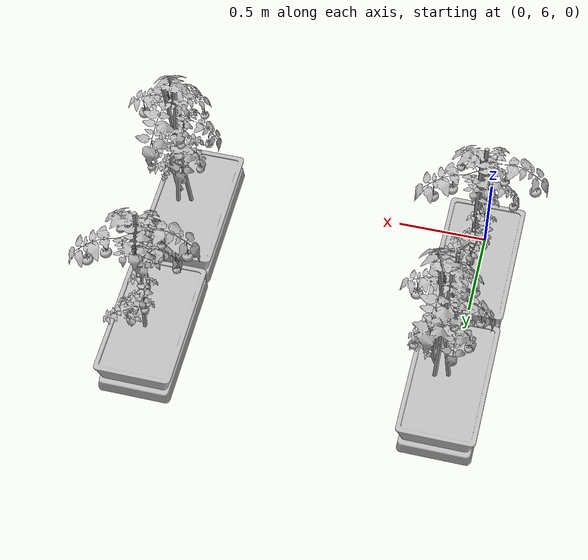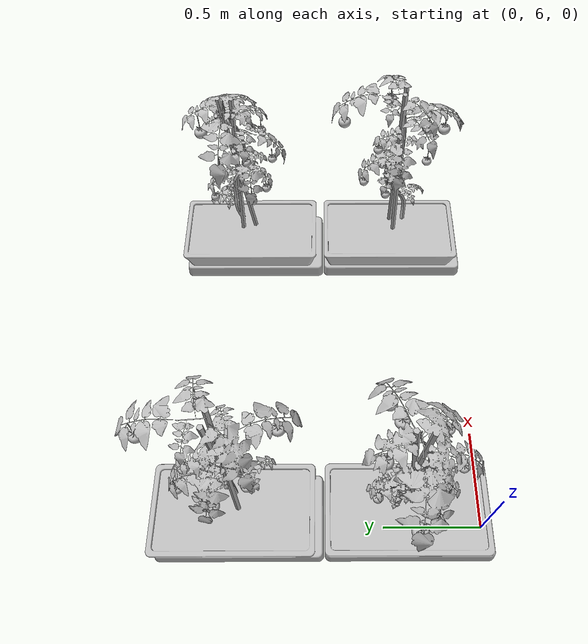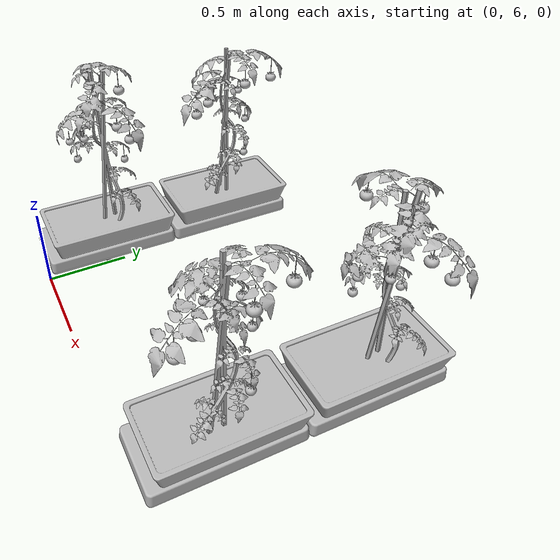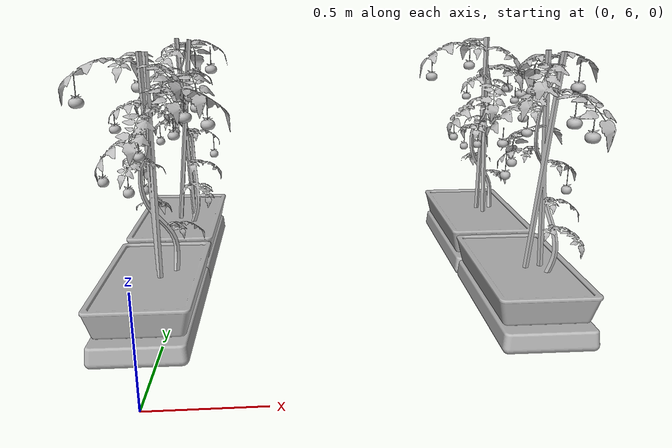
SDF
<sdf version="1.6">
 <world name="default">
  <model name="plant08">
   <static>0</static>
   <link name="tomato_plant_link">
    <inertial>
     <mass>20</mass>
     <inertia><ixx>1</ixx><ixy>0</ixy><ixz>0</ixz><iyy>1</iyy><iyz>0</iyz><izz>1</izz></inertia>
    </inertial>
    <visual name="visual">
     <geometry><mesh><uri>model://tomato_plant/meshes/tomato_plant.obj</uri></mesh></geometry>
    </visual>
    <collision name="collision">
     <pose>0 0 0.05 0 -0 0</pose>
     <geometry><box><size>0.1 0.1 0.1</size></box></geometry>
    </collision>
   </link>
   <link name="t_link_0">
    <pose>0.176111 0.046061 0.713729 0 -0 0</pose>
    <inertial>
     <mass>0.1</mass>
     <inertia><ixx>1</ixx><ixy>0</ixy><ixz>0</ixz><iyy>1</iyy><iyz>0</iyz><izz>1</izz></inertia>
    </inertial>
    <collision name="collision"><geometry><sphere><radius>0.02</radius></sphere></geometry></collision>
    <visual name="visual">
     <geometry><mesh><uri>model://green_tomato/meshes/green_tomato.obj</uri></mesh></geometry>
    </visual>
   </link>
   <joint name="t_joint_0" type="fixed">
    <parent>tomato_plant_link</parent>
    <child>t_link_0</child>
    <axis>
     <xyz>0 0 1</xyz>
     <use_parent_model_frame>1</use_parent_model_frame>
     <limit><lower>-1e+16</lower><upper>1e+16</upper></limit>
    </axis>
    <sensor name="force_torque" type="force_torque">
     <always_on>1</always_on>
     <update_rate>250</update_rate>
     <plugin name="breakable_0" filename="libBreakableJointPlugin.so">
      <breaking_force_N>10</breaking_force_N>
     </plugin>
    </sensor>
   </joint>
   <link name="t_link_1">
    <pose>0.063172 0.108629 0.685474 0 -0 0</pose>
    <inertial>
     <mass>0.1</mass>
     <inertia><ixx>1</ixx><ixy>0</ixy><ixz>0</ixz><iyy>1</iyy><iyz>0</iyz><izz>1</izz></inertia>
    </inertial>
    <collision name="collision"><geometry><sphere><radius>0.02</radius></sphere></geometry></collision>
    <visual name="visual">
     <geometry><mesh><uri>model://green_tomato/meshes/green_tomato.obj</uri></mesh></geometry>
    </visual>
   </link>
   <joint name="t_joint_1" type="fixed">
    <parent>tomato_plant_link</parent>
    <child>t_link_1</child>
    <axis>
     <xyz>0 0 1</xyz>
     <use_parent_model_frame>1</use_parent_model_frame>
     <limit><lower>-1e+16</lower><upper>1e+16</upper></limit>
    </axis>
    <sensor name="force_torque" type="force_torque">
     <always_on>1</always_on>
     <update_rate>250</update_rate>
     <plugin name="breakable_1" filename="libBreakableJointPlugin.so">
      <breaking_force_N>10</breaking_force_N>
     </plugin>
    </sensor>
   </joint>
   <link name="t_link_2">
    <pose>0.062027 -0.170581 0.614534 0 -0 0</pose>
    <inertial>
     <mass>0.1</mass>
     <inertia><ixx>1</ixx><ixy>0</ixy><ixz>0</ixz><iyy>1</iyy><iyz>0</iyz><izz>1</izz></inertia>
    </inertial>
    <collision name="collision"><geometry><sphere><radius>0.02</radius></sphere></geometry></collision>
    <visual name="visual">
     <geometry><mesh><uri>model://green_tomato/meshes/green_tomato.obj</uri></mesh></geometry>
    </visual>
   </link>
   <joint name="t_joint_2" type="fixed">
    <parent>tomato_plant_link</parent>
    <child>t_link_2</child>
    <axis>
     <xyz>0 0 1</xyz>
     <use_parent_model_frame>1</use_parent_model_frame>
     <limit><lower>-1e+16</lower><upper>1e+16</upper></limit>
    </axis>
    <sensor name="force_torque" type="force_torque">
     <always_on>1</always_on>
     <update_rate>250</update_rate>
     <plugin name="breakable_2" filename="libBreakableJointPlugin.so">
      <breaking_force_N>10</breaking_force_N>
     </plugin>
    </sensor>
   </joint>
   <link name="t_link_3">
    <pose>0.114746 0.0304 0.926457 0 -0 0</pose>
    <inertial>
     <mass>0.1</mass>
     <inertia><ixx>1</ixx><ixy>0</ixy><ixz>0</ixz><iyy>1</iyy><iyz>0</iyz><izz>1</izz></inertia>
    </inertial>
    <collision name="collision"><geometry><sphere><radius>0.02</radius></sphere></geometry></collision>
    <visual name="visual">
     <geometry><mesh><uri>model://yellow_tomato/meshes/yellow_tomato.obj</uri></mesh></geometry>
    </visual>
   </link>
   <joint name="t_joint_3" type="fixed">
    <parent>tomato_plant_link</parent>
    <child>t_link_3</child>
    <axis>
     <xyz>0 0 1</xyz>
     <use_parent_model_frame>1</use_parent_model_frame>
     <limit><lower>-1e+16</lower><upper>1e+16</upper></limit>
    </axis>
    <sensor name="force_torque" type="force_torque">
     <always_on>1</always_on>
     <update_rate>250</update_rate>
     <plugin name="breakable_3" filename="libBreakableJointPlugin.so">
      <breaking_force_N>10</breaking_force_N>
     </plugin>
    </sensor>
   </joint>
   <link name="t_link_4">
    <pose>0.003426 0.147925 0.840454 0 -0 0</pose>
    <inertial>
     <mass>0.1</mass>
     <inertia><ixx>1</ixx><ixy>0</ixy><ixz>0</ixz><iyy>1</iyy><iyz>0</iyz><izz>1</izz></inertia>
    </inertial>
    <collision name="collision"><geometry><sphere><radius>0.02</radius></sphere></geometry></collision>
    <visual name="visual">
     <geometry><mesh><uri>model://yellow_tomato/meshes/yellow_tomato.obj</uri></mesh></geometry>
    </visual>
   </link>
   <joint name="t_joint_4" type="fixed">
    <parent>tomato_plant_link</parent>
    <child>t_link_4</child>
    <axis>
     <xyz>0 0 1</xyz>
     <use_parent_model_frame>1</use_parent_model_frame>
     <limit><lower>-1e+16</lower><upper>1e+16</upper></limit>
    </axis>
    <sensor name="force_torque" type="force_torque">
     <always_on>1</always_on>
     <update_rate>250</update_rate>
     <plugin name="breakable_4" filename="libBreakableJointPlugin.so">
      <breaking_force_N>10</breaking_force_N>
     </plugin>
    </sensor>
   </joint>
   <link name="t_link_5">
    <pose>-0.12391 0.091553 0.91111 0 -0 0</pose>
    <inertial>
     <mass>0.1</mass>
     <inertia><ixx>1</ixx><ixy>0</ixy><ixz>0</ixz><iyy>1</iyy><iyz>0</iyz><izz>1</izz></inertia>
    </inertial>
    <collision name="collision"><geometry><sphere><radius>0.02</radius></sphere></geometry></collision>
    <visual name="visual">
     <geometry><mesh><uri>model://yellow_tomato/meshes/yellow_tomato.obj</uri></mesh></geometry>
    </visual>
   </link>
   <joint name="t_joint_5" type="fixed">
    <parent>tomato_plant_link</parent>
    <child>t_link_5</child>
    <axis>
     <xyz>0 0 1</xyz>
     <use_parent_model_frame>1</use_parent_model_frame>
     <limit><lower>-1e+16</lower><upper>1e+16</upper></limit>
    </axis>
    <sensor name="force_torque" type="force_torque">
     <always_on>1</always_on>
     <update_rate>250</update_rate>
     <plugin name="breakable_5" filename="libBreakableJointPlugin.so">
      <breaking_force_N>10</breaking_force_N>
     </plugin>
    </sensor>
   </joint>
   <link name="t_link_6">
    <pose>-0.23014 -0.132697 0.911579 0 -0 0</pose>
    <inertial>
     <mass>0.1</mass>
     <inertia><ixx>1</ixx><ixy>0</ixy><ixz>0</ixz><iyy>1</iyy><iyz>0</iyz><izz>1</izz></inertia>
    </inertial>
    <collision name="collision"><geometry><sphere><radius>0.03</radius></sphere></geometry></collision>
    <visual name="visual">
     <geometry><mesh><uri>model://red_tomato/meshes/red_tomato.obj</uri></mesh></geometry>
    </visual>
   </link>
   <joint name="t_joint_6" type="fixed">
    <parent>tomato_plant_link</parent>
    <child>t_link_6</child>
    <axis>
     <xyz>0 0 1</xyz>
     <use_parent_model_frame>1</use_parent_model_frame>
     <limit><lower>-1e+16</lower><upper>1e+16</upper></limit>
    </axis>
    <sensor name="force_torque" type="force_torque">
     <always_on>1</always_on>
     <update_rate>250</update_rate>
     <plugin name="breakable_6" filename="libBreakableJointPlugin.so">
      <breaking_force_N>10</breaking_force_N>
     </plugin>
    </sensor>
   </joint>
   <link name="t_link_7">
    <pose>-0.139776 -0.09326 0.950185 0 -0 0</pose>
    <inertial>
     <mass>0.1</mass>
     <inertia><ixx>1</ixx><ixy>0</ixy><ixz>0</ixz><iyy>1</iyy><iyz>0</iyz><izz>1</izz></inertia>
    </inertial>
    <collision name="collision"><geometry><sphere><radius>0.03</radius></sphere></geometry></collision>
    <visual name="visual">
     <geometry><mesh><uri>model://red_tomato/meshes/red_tomato.obj</uri></mesh></geometry>
    </visual>
   </link>
   <joint name="t_joint_7" type="fixed">
    <parent>tomato_plant_link</parent>
    <child>t_link_7</child>
    <axis>
     <xyz>0 0 1</xyz>
     <use_parent_model_frame>1</use_parent_model_frame>
     <limit><lower>-1e+16</lower><upper>1e+16</upper></limit>
    </axis>
    <sensor name="force_torque" type="force_torque">
     <always_on>1</always_on>
     <update_rate>250</update_rate>
     <plugin name="breakable_7" filename="libBreakableJointPlugin.so">
      <breaking_force_N>10</breaking_force_N>
     </plugin>
    </sensor>
   </joint>
   <link name="t_link_8">
    <pose>0.284181 -0.063758 1.01928 0 -0 0</pose>
    <inertial>
     <mass>0.1</mass>
     <inertia><ixx>1</ixx><ixy>0</ixy><ixz>0</ixz><iyy>1</iyy><iyz>0</iyz><izz>1</izz></inertia>
    </inertial>
    <collision name="collision"><geometry><sphere><radius>0.03</radius></sphere></geometry></collision>
    <visual name="visual">
     <geometry><mesh><uri>model://red_tomato/meshes/red_tomato.obj</uri></mesh></geometry>
    </visual>
   </link>
   <joint name="t_joint_8" type="fixed">
    <parent>tomato_plant_link</parent>
    <child>t_link_8</child>
    <axis>
     <xyz>0 0 1</xyz>
     <use_parent_model_frame>1</use_parent_model_frame>
     <limit><lower>-1e+16</lower><upper>1e+16</upper></limit>
    </axis>
    <sensor name="force_torque" type="force_torque">
     <always_on>1</always_on>
     <update_rate>250</update_rate>
     <plugin name="breakable_8" filename="libBreakableJointPlugin.so">
      <breaking_force_N>10</breaking_force_N>
     </plugin>
    </sensor>
   </joint>
   <link name="t_link_9">
    <pose>0.055319 -0.176349 1.06525 0 -0 0</pose>
    <inertial>
     <mass>0.1</mass>
     <inertia><ixx>1</ixx><ixy>0</ixy><ixz>0</ixz><iyy>1</iyy><iyz>0</iyz><izz>1</izz></inertia>
    </inertial>
    <collision name="collision"><geometry><sphere><radius>0.03</radius></sphere></geometry></collision>
    <visual name="visual">
     <geometry><mesh><uri>model://red_tomato/meshes/red_tomato.obj</uri></mesh></geometry>
    </visual>
   </link>
   <joint name="t_joint_9" type="fixed">
    <parent>tomato_plant_link</parent>
    <child>t_link_9</child>
    <axis>
     <xyz>0 0 1</xyz>
     <use_parent_model_frame>1</use_parent_model_frame>
     <limit><lower>-1e+16</lower><upper>1e+16</upper></limit>
    </axis>
    <sensor name="force_torque" type="force_torque">
     <always_on>1</always_on>
     <update_rate>250</update_rate>
     <plugin name="breakable_9" filename="libBreakableJointPlugin.so">
      <breaking_force_N>10</breaking_force_N>
     </plugin>
    </sensor>
   </joint>
   <pose>0.020511 6.40806 0.109278 0.000786 -0.001547 3.1361</pose>
  </model>
  <model name="trough08">
   <static>1</static>
   <link name="trough_link">
    <visual name="visual"><geometry><mesh><uri>model://trough/meshes/truf.obj</uri></mesh></geometry></visual>
   </link>
   <pose>0 6.4 0.18 1.57 -0 1.57</pose>
  </model>
  <model name="plant09">
   <static>0</static>
   <link name="tomato_plant_link">
    <inertial>
     <mass>20</mass>
     <inertia><ixx>1</ixx><ixy>0</ixy><ixz>0</ixz><iyy>1</iyy><iyz>0</iyz><izz>1</izz></inertia>
    </inertial>
    <visual name="visual">
     <geometry><mesh><uri>model://tomato_plant/meshes/tomato_plant.obj</uri></mesh></geometry>
    </visual>
    <collision name="collision">
     <pose>0 0 0.05 0 -0 0</pose>
     <geometry><box><size>0.1 0.1 0.1</size></box></geometry>
    </collision>
   </link>
   <link name="t_link_0">
    <pose>0.176111 0.046061 0.713729 0 -0 0</pose>
    <inertial>
     <mass>0.1</mass>
     <inertia><ixx>1</ixx><ixy>0</ixy><ixz>0</ixz><iyy>1</iyy><iyz>0</iyz><izz>1</izz></inertia>
    </inertial>
    <collision name="collision"><geometry><sphere><radius>0.02</radius></sphere></geometry></collision>
    <visual name="visual">
     <geometry><mesh><uri>model://green_tomato/meshes/green_tomato.obj</uri></mesh></geometry>
    </visual>
   </link>
   <joint name="t_joint_0" type="fixed">
    <parent>tomato_plant_link</parent>
    <child>t_link_0</child>
    <axis>
     <xyz>0 0 1</xyz>
     <use_parent_model_frame>1</use_parent_model_frame>
     <limit><lower>-1e+16</lower><upper>1e+16</upper></limit>
    </axis>
    <sensor name="force_torque" type="force_torque">
     <always_on>1</always_on>
     <update_rate>250</update_rate>
     <plugin name="breakable_0" filename="libBreakableJointPlugin.so">
      <breaking_force_N>10</breaking_force_N>
     </plugin>
    </sensor>
   </joint>
   <link name="t_link_1">
    <pose>0.063172 0.108629 0.685474 0 -0 0</pose>
    <inertial>
     <mass>0.1</mass>
     <inertia><ixx>1</ixx><ixy>0</ixy><ixz>0</ixz><iyy>1</iyy><iyz>0</iyz><izz>1</izz></inertia>
    </inertial>
    <collision name="collision"><geometry><sphere><radius>0.02</radius></sphere></geometry></collision>
    <visual name="visual">
     <geometry><mesh><uri>model://green_tomato/meshes/green_tomato.obj</uri></mesh></geometry>
    </visual>
   </link>
   <joint name="t_joint_1" type="fixed">
    <parent>tomato_plant_link</parent>
    <child>t_link_1</child>
    <axis>
     <xyz>0 0 1</xyz>
     <use_parent_model_frame>1</use_parent_model_frame>
     <limit><lower>-1e+16</lower><upper>1e+16</upper></limit>
    </axis>
    <sensor name="force_torque" type="force_torque">
     <always_on>1</always_on>
     <update_rate>250</update_rate>
     <plugin name="breakable_1" filename="libBreakableJointPlugin.so">
      <breaking_force_N>10</breaking_force_N>
     </plugin>
    </sensor>
   </joint>
   <link name="t_link_2">
    <pose>0.062027 -0.170581 0.614534 0 -0 0</pose>
    <inertial>
     <mass>0.1</mass>
     <inertia><ixx>1</ixx><ixy>0</ixy><ixz>0</ixz><iyy>1</iyy><iyz>0</iyz><izz>1</izz></inertia>
    </inertial>
    <collision name="collision"><geometry><sphere><radius>0.02</radius></sphere></geometry></collision>
    <visual name="visual">
     <geometry><mesh><uri>model://green_tomato/meshes/green_tomato.obj</uri></mesh></geometry>
    </visual>
   </link>
   <joint name="t_joint_2" type="fixed">
    <parent>tomato_plant_link</parent>
    <child>t_link_2</child>
    <axis>
     <xyz>0 0 1</xyz>
     <use_parent_model_frame>1</use_parent_model_frame>
     <limit><lower>-1e+16</lower><upper>1e+16</upper></limit>
    </axis>
    <sensor name="force_torque" type="force_torque">
     <always_on>1</always_on>
     <update_rate>250</update_rate>
     <plugin name="breakable_2" filename="libBreakableJointPlugin.so">
      <breaking_force_N>10</breaking_force_N>
     </plugin>
    </sensor>
   </joint>
   <link name="t_link_3">
    <pose>0.114746 0.0304 0.926457 0 -0 0</pose>
    <inertial>
     <mass>0.1</mass>
     <inertia><ixx>1</ixx><ixy>0</ixy><ixz>0</ixz><iyy>1</iyy><iyz>0</iyz><izz>1</izz></inertia>
    </inertial>
    <collision name="collision"><geometry><sphere><radius>0.02</radius></sphere></geometry></collision>
    <visual name="visual">
     <geometry><mesh><uri>model://yellow_tomato/meshes/yellow_tomato.obj</uri></mesh></geometry>
    </visual>
   </link>
   <joint name="t_joint_3" type="fixed">
    <parent>tomato_plant_link</parent>
    <child>t_link_3</child>
    <axis>
     <xyz>0 0 1</xyz>
     <use_parent_model_frame>1</use_parent_model_frame>
     <limit><lower>-1e+16</lower><upper>1e+16</upper></limit>
    </axis>
    <sensor name="force_torque" type="force_torque">
     <always_on>1</always_on>
     <update_rate>250</update_rate>
     <plugin name="breakable_3" filename="libBreakableJointPlugin.so">
      <breaking_force_N>10</breaking_force_N>
     </plugin>
    </sensor>
   </joint>
   <link name="t_link_4">
    <pose>0.003426 0.147925 0.840454 0 -0 0</pose>
    <inertial>
     <mass>0.1</mass>
     <inertia><ixx>1</ixx><ixy>0</ixy><ixz>0</ixz><iyy>1</iyy><iyz>0</iyz><izz>1</izz></inertia>
    </inertial>
    <collision name="collision"><geometry><sphere><radius>0.02</radius></sphere></geometry></collision>
    <visual name="visual">
     <geometry><mesh><uri>model://yellow_tomato/meshes/yellow_tomato.obj</uri></mesh></geometry>
    </visual>
   </link>
   <joint name="t_joint_4" type="fixed">
    <parent>tomato_plant_link</parent>
    <child>t_link_4</child>
    <axis>
     <xyz>0 0 1</xyz>
     <use_parent_model_frame>1</use_parent_model_frame>
     <limit><lower>-1e+16</lower><upper>1e+16</upper></limit>
    </axis>
    <sensor name="force_torque" type="force_torque">
     <always_on>1</always_on>
     <update_rate>250</update_rate>
     <plugin name="breakable_4" filename="libBreakableJointPlugin.so">
      <breaking_force_N>10</breaking_force_N>
     </plugin>
    </sensor>
   </joint>
   <link name="t_link_5">
    <pose>-0.12391 0.091553 0.91111 0 -0 0</pose>
    <inertial>
     <mass>0.1</mass>
     <inertia><ixx>1</ixx><ixy>0</ixy><ixz>0</ixz><iyy>1</iyy><iyz>0</iyz><izz>1</izz></inertia>
    </inertial>
    <collision name="collision"><geometry><sphere><radius>0.02</radius></sphere></geometry></collision>
    <visual name="visual">
     <geometry><mesh><uri>model://yellow_tomato/meshes/yellow_tomato.obj</uri></mesh></geometry>
    </visual>
   </link>
   <joint name="t_joint_5" type="fixed">
    <parent>tomato_plant_link</parent>
    <child>t_link_5</child>
    <axis>
     <xyz>0 0 1</xyz>
     <use_parent_model_frame>1</use_parent_model_frame>
     <limit><lower>-1e+16</lower><upper>1e+16</upper></limit>
    </axis>
    <sensor name="force_torque" type="force_torque">
     <always_on>1</always_on>
     <update_rate>250</update_rate>
     <plugin name="breakable_5" filename="libBreakableJointPlugin.so">
      <breaking_force_N>10</breaking_force_N>
     </plugin>
    </sensor>
   </joint>
   <link name="t_link_6">
    <pose>-0.23014 -0.132697 0.911579 0 -0 0</pose>
    <inertial>
     <mass>0.1</mass>
     <inertia><ixx>1</ixx><ixy>0</ixy><ixz>0</ixz><iyy>1</iyy><iyz>0</iyz><izz>1</izz></inertia>
    </inertial>
    <collision name="collision"><geometry><sphere><radius>0.03</radius></sphere></geometry></collision>
    <visual name="visual">
     <geometry><mesh><uri>model://red_tomato/meshes/red_tomato.obj</uri></mesh></geometry>
    </visual>
   </link>
   <joint name="t_joint_6" type="fixed">
    <parent>tomato_plant_link</parent>
    <child>t_link_6</child>
    <axis>
     <xyz>0 0 1</xyz>
     <use_parent_model_frame>1</use_parent_model_frame>
     <limit><lower>-1e+16</lower><upper>1e+16</upper></limit>
    </axis>
    <sensor name="force_torque" type="force_torque">
     <always_on>1</always_on>
     <update_rate>250</update_rate>
     <plugin name="breakable_6" filename="libBreakableJointPlugin.so">
      <breaking_force_N>10</breaking_force_N>
     </plugin>
    </sensor>
   </joint>
   <link name="t_link_7">
    <pose>-0.139776 -0.09326 0.950185 0 -0 0</pose>
    <inertial>
     <mass>0.1</mass>
     <inertia><ixx>1</ixx><ixy>0</ixy><ixz>0</ixz><iyy>1</iyy><iyz>0</iyz><izz>1</izz></inertia>
    </inertial>
    <collision name="collision"><geometry><sphere><radius>0.03</radius></sphere></geometry></collision>
    <visual name="visual">
     <geometry><mesh><uri>model://red_tomato/meshes/red_tomato.obj</uri></mesh></geometry>
    </visual>
   </link>
   <joint name="t_joint_7" type="fixed">
    <parent>tomato_plant_link</parent>
    <child>t_link_7</child>
    <axis>
     <xyz>0 0 1</xyz>
     <use_parent_model_frame>1</use_parent_model_frame>
     <limit><lower>-1e+16</lower><upper>1e+16</upper></limit>
    </axis>
    <sensor name="force_torque" type="force_torque">
     <always_on>1</always_on>
     <update_rate>250</update_rate>
     <plugin name="breakable_7" filename="libBreakableJointPlugin.so">
      <breaking_force_N>10</breaking_force_N>
     </plugin>
    </sensor>
   </joint>
   <link name="t_link_8">
    <pose>0.284181 -0.063758 1.01928 0 -0 0</pose>
    <inertial>
     <mass>0.1</mass>
     <inertia><ixx>1</ixx><ixy>0</ixy><ixz>0</ixz><iyy>1</iyy><iyz>0</iyz><izz>1</izz></inertia>
    </inertial>
    <collision name="collision"><geometry><sphere><radius>0.03</radius></sphere></geometry></collision>
    <visual name="visual">
     <geometry><mesh><uri>model://red_tomato/meshes/red_tomato.obj</uri></mesh></geometry>
    </visual>
   </link>
   <joint name="t_joint_8" type="fixed">
    <parent>tomato_plant_link</parent>
    <child>t_link_8</child>
    <axis>
     <xyz>0 0 1</xyz>
     <use_parent_model_frame>1</use_parent_model_frame>
     <limit><lower>-1e+16</lower><upper>1e+16</upper></limit>
    </axis>
    <sensor name="force_torque" type="force_torque">
     <always_on>1</always_on>
     <update_rate>250</update_rate>
     <plugin name="breakable_8" filename="libBreakableJointPlugin.so">
      <breaking_force_N>10</breaking_force_N>
     </plugin>
    </sensor>
   </joint>
   <link name="t_link_9">
    <pose>0.055319 -0.176349 1.06525 0 -0 0</pose>
    <inertial>
     <mass>0.1</mass>
     <inertia><ixx>1</ixx><ixy>0</ixy><ixz>0</ixz><iyy>1</iyy><iyz>0</iyz><izz>1</izz></inertia>
    </inertial>
    <collision name="collision"><geometry><sphere><radius>0.03</radius></sphere></geometry></collision>
    <visual name="visual">
     <geometry><mesh><uri>model://red_tomato/meshes/red_tomato.obj</uri></mesh></geometry>
    </visual>
   </link>
   <joint name="t_joint_9" type="fixed">
    <parent>tomato_plant_link</parent>
    <child>t_link_9</child>
    <axis>
     <xyz>0 0 1</xyz>
     <use_parent_model_frame>1</use_parent_model_frame>
     <limit><lower>-1e+16</lower><upper>1e+16</upper></limit>
    </axis>
    <sensor name="force_torque" type="force_torque">
     <always_on>1</always_on>
     <update_rate>250</update_rate>
     <plugin name="breakable_9" filename="libBreakableJointPlugin.so">
      <breaking_force_N>10</breaking_force_N>
     </plugin>
    </sensor>
   </joint>
   <pose>0.018213 7.20995 0.108646 0.001568 0.000852 1.5604</pose>
  </model>
  <model name="trough09">
   <static>1</static>
   <link name="trough_link">
    <visual name="visual"><geometry><mesh><uri>model://trough/meshes/truf.obj</uri></mesh></geometry></visual>
   </link>
   <pose>0 7.2 0.18 1.57 -0 1.57</pose>
  </model>
  <model name="plant18">
   <static>0</static>
   <link name="tomato_plant_link">
    <inertial>
     <mass>20</mass>
     <inertia><ixx>1</ixx><ixy>0</ixy><ixz>0</ixz><iyy>1</iyy><iyz>0</iyz><izz>1</izz></inertia>
    </inertial>
    <visual name="visual">
     <geometry><mesh><uri>model://tomato_plant/meshes/tomato_plant.obj</uri></mesh></geometry>
    </visual>
    <collision name="collision">
     <pose>0 0 0.05 0 -0 0</pose>
     <geometry><box><size>0.1 0.1 0.1</size></box></geometry>
    </collision>
   </link>
   <link name="t_link_0">
    <pose>0.176111 0.046061 0.713729 0 -0 0</pose>
    <inertial>
     <mass>0.1</mass>
     <inertia><ixx>1</ixx><ixy>0</ixy><ixz>0</ixz><iyy>1</iyy><iyz>0</iyz><izz>1</izz></inertia>
    </inertial>
    <collision name="collision"><geometry><sphere><radius>0.02</radius></sphere></geometry></collision>
    <visual name="visual">
     <geometry><mesh><uri>model://green_tomato/meshes/green_tomato.obj</uri></mesh></geometry>
    </visual>
   </link>
   <joint name="t_joint_0" type="fixed">
    <parent>tomato_plant_link</parent>
    <child>t_link_0</child>
    <axis>
     <xyz>0 0 1</xyz>
     <use_parent_model_frame>1</use_parent_model_frame>
     <limit><lower>-1e+16</lower><upper>1e+16</upper></limit>
    </axis>
    <sensor name="force_torque" type="force_torque">
     <always_on>1</always_on>
     <update_rate>250</update_rate>
     <plugin name="breakable_0" filename="libBreakableJointPlugin.so">
      <breaking_force_N>10</breaking_force_N>
     </plugin>
    </sensor>
   </joint>
   <link name="t_link_1">
    <pose>0.063172 0.108629 0.685474 0 -0 0</pose>
    <inertial>
     <mass>0.1</mass>
     <inertia><ixx>1</ixx><ixy>0</ixy><ixz>0</ixz><iyy>1</iyy><iyz>0</iyz><izz>1</izz></inertia>
    </inertial>
    <collision name="collision"><geometry><sphere><radius>0.02</radius></sphere></geometry></collision>
    <visual name="visual">
     <geometry><mesh><uri>model://green_tomato/meshes/green_tomato.obj</uri></mesh></geometry>
    </visual>
   </link>
   <joint name="t_joint_1" type="fixed">
    <parent>tomato_plant_link</parent>
    <child>t_link_1</child>
    <axis>
     <xyz>0 0 1</xyz>
     <use_parent_model_frame>1</use_parent_model_frame>
     <limit><lower>-1e+16</lower><upper>1e+16</upper></limit>
    </axis>
    <sensor name="force_torque" type="force_torque">
     <always_on>1</always_on>
     <update_rate>250</update_rate>
     <plugin name="breakable_1" filename="libBreakableJointPlugin.so">
      <breaking_force_N>10</breaking_force_N>
     </plugin>
    </sensor>
   </joint>
   <link name="t_link_2">
    <pose>0.062027 -0.170581 0.614534 0 -0 0</pose>
    <inertial>
     <mass>0.1</mass>
     <inertia><ixx>1</ixx><ixy>0</ixy><ixz>0</ixz><iyy>1</iyy><iyz>0</iyz><izz>1</izz></inertia>
    </inertial>
    <collision name="collision"><geometry><sphere><radius>0.02</radius></sphere></geometry></collision>
    <visual name="visual">
     <geometry><mesh><uri>model://green_tomato/meshes/green_tomato.obj</uri></mesh></geometry>
    </visual>
   </link>
   <joint name="t_joint_2" type="fixed">
    <parent>tomato_plant_link</parent>
    <child>t_link_2</child>
    <axis>
     <xyz>0 0 1</xyz>
     <use_parent_model_frame>1</use_parent_model_frame>
     <limit><lower>-1e+16</lower><upper>1e+16</upper></limit>
    </axis>
    <sensor name="force_torque" type="force_torque">
     <always_on>1</always_on>
     <update_rate>250</update_rate>
     <plugin name="breakable_2" filename="libBreakableJointPlugin.so">
      <breaking_force_N>10</breaking_force_N>
     </plugin>
    </sensor>
   </joint>
   <link name="t_link_3">
    <pose>0.114746 0.0304 0.926457 0 -0 0</pose>
    <inertial>
     <mass>0.1</mass>
     <inertia><ixx>1</ixx><ixy>0</ixy><ixz>0</ixz><iyy>1</iyy><iyz>0</iyz><izz>1</izz></inertia>
    </inertial>
    <collision name="collision"><geometry><sphere><radius>0.02</radius></sphere></geometry></collision>
    <visual name="visual">
     <geometry><mesh><uri>model://yellow_tomato/meshes/yellow_tomato.obj</uri></mesh></geometry>
    </visual>
   </link>
   <joint name="t_joint_3" type="fixed">
    <parent>tomato_plant_link</parent>
    <child>t_link_3</child>
    <axis>
     <xyz>0 0 1</xyz>
     <use_parent_model_frame>1</use_parent_model_frame>
     <limit><lower>-1e+16</lower><upper>1e+16</upper></limit>
    </axis>
    <sensor name="force_torque" type="force_torque">
     <always_on>1</always_on>
     <update_rate>250</update_rate>
     <plugin name="breakable_3" filename="libBreakableJointPlugin.so">
      <breaking_force_N>10</breaking_force_N>
     </plugin>
    </sensor>
   </joint>
   <link name="t_link_4">
    <pose>0.003426 0.147925 0.840454 0 -0 0</pose>
    <inertial>
     <mass>0.1</mass>
     <inertia><ixx>1</ixx><ixy>0</ixy><ixz>0</ixz><iyy>1</iyy><iyz>0</iyz><izz>1</izz></inertia>
    </inertial>
    <collision name="collision"><geometry><sphere><radius>0.02</radius></sphere></geometry></collision>
    <visual name="visual">
     <geometry><mesh><uri>model://yellow_tomato/meshes/yellow_tomato.obj</uri></mesh></geometry>
    </visual>
   </link>
   <joint name="t_joint_4" type="fixed">
    <parent>tomato_plant_link</parent>
    <child>t_link_4</child>
    <axis>
     <xyz>0 0 1</xyz>
     <use_parent_model_frame>1</use_parent_model_frame>
     <limit><lower>-1e+16</lower><upper>1e+16</upper></limit>
    </axis>
    <sensor name="force_torque" type="force_torque">
     <always_on>1</always_on>
     <update_rate>250</update_rate>
     <plugin name="breakable_4" filename="libBreakableJointPlugin.so">
      <breaking_force_N>10</breaking_force_N>
     </plugin>
    </sensor>
   </joint>
   <link name="t_link_5">
    <pose>-0.12391 0.091553 0.91111 0 -0 0</pose>
    <inertial>
     <mass>0.1</mass>
     <inertia><ixx>1</ixx><ixy>0</ixy><ixz>0</ixz><iyy>1</iyy><iyz>0</iyz><izz>1</izz></inertia>
    </inertial>
    <collision name="collision"><geometry><sphere><radius>0.02</radius></sphere></geometry></collision>
    <visual name="visual">
     <geometry><mesh><uri>model://yellow_tomato/meshes/yellow_tomato.obj</uri></mesh></geometry>
    </visual>
   </link>
   <joint name="t_joint_5" type="fixed">
    <parent>tomato_plant_link</parent>
    <child>t_link_5</child>
    <axis>
     <xyz>0 0 1</xyz>
     <use_parent_model_frame>1</use_parent_model_frame>
     <limit><lower>-1e+16</lower><upper>1e+16</upper></limit>
    </axis>
    <sensor name="force_torque" type="force_torque">
     <always_on>1</always_on>
     <update_rate>250</update_rate>
     <plugin name="breakable_5" filename="libBreakableJointPlugin.so">
      <breaking_force_N>10</breaking_force_N>
     </plugin>
    </sensor>
   </joint>
   <link name="t_link_6">
    <pose>-0.23014 -0.132697 0.911579 0 -0 0</pose>
    <inertial>
     <mass>0.1</mass>
     <inertia><ixx>1</ixx><ixy>0</ixy><ixz>0</ixz><iyy>1</iyy><iyz>0</iyz><izz>1</izz></inertia>
    </inertial>
    <collision name="collision"><geometry><sphere><radius>0.03</radius></sphere></geometry></collision>
    <visual name="visual">
     <geometry><mesh><uri>model://red_tomato/meshes/red_tomato.obj</uri></mesh></geometry>
    </visual>
   </link>
   <joint name="t_joint_6" type="fixed">
    <parent>tomato_plant_link</parent>
    <child>t_link_6</child>
    <axis>
     <xyz>0 0 1</xyz>
     <use_parent_model_frame>1</use_parent_model_frame>
     <limit><lower>-1e+16</lower><upper>1e+16</upper></limit>
    </axis>
    <sensor name="force_torque" type="force_torque">
     <always_on>1</always_on>
     <update_rate>250</update_rate>
     <plugin name="breakable_6" filename="libBreakableJointPlugin.so">
      <breaking_force_N>10</breaking_force_N>
     </plugin>
    </sensor>
   </joint>
   <link name="t_link_7">
    <pose>-0.139776 -0.09326 0.950185 0 -0 0</pose>
    <inertial>
     <mass>0.1</mass>
     <inertia><ixx>1</ixx><ixy>0</ixy><ixz>0</ixz><iyy>1</iyy><iyz>0</iyz><izz>1</izz></inertia>
    </inertial>
    <collision name="collision"><geometry><sphere><radius>0.03</radius></sphere></geometry></collision>
    <visual name="visual">
     <geometry><mesh><uri>model://red_tomato/meshes/red_tomato.obj</uri></mesh></geometry>
    </visual>
   </link>
   <joint name="t_joint_7" type="fixed">
    <parent>tomato_plant_link</parent>
    <child>t_link_7</child>
    <axis>
     <xyz>0 0 1</xyz>
     <use_parent_model_frame>1</use_parent_model_frame>
     <limit><lower>-1e+16</lower><upper>1e+16</upper></limit>
    </axis>
    <sensor name="force_torque" type="force_torque">
     <always_on>1</always_on>
     <update_rate>250</update_rate>
     <plugin name="breakable_7" filename="libBreakableJointPlugin.so">
      <breaking_force_N>10</breaking_force_N>
     </plugin>
    </sensor>
   </joint>
   <link name="t_link_8">
    <pose>0.284181 -0.063758 1.01928 0 -0 0</pose>
    <inertial>
     <mass>0.1</mass>
     <inertia><ixx>1</ixx><ixy>0</ixy><ixz>0</ixz><iyy>1</iyy><iyz>0</iyz><izz>1</izz></inertia>
    </inertial>
    <collision name="collision"><geometry><sphere><radius>0.03</radius></sphere></geometry></collision>
    <visual name="visual">
     <geometry><mesh><uri>model://red_tomato/meshes/red_tomato.obj</uri></mesh></geometry>
    </visual>
   </link>
   <joint name="t_joint_8" type="fixed">
    <parent>tomato_plant_link</parent>
    <child>t_link_8</child>
    <axis>
     <xyz>0 0 1</xyz>
     <use_parent_model_frame>1</use_parent_model_frame>
     <limit><lower>-1e+16</lower><upper>1e+16</upper></limit>
    </axis>
    <sensor name="force_torque" type="force_torque">
     <always_on>1</always_on>
     <update_rate>250</update_rate>
     <plugin name="breakable_8" filename="libBreakableJointPlugin.so">
      <breaking_force_N>10</breaking_force_N>
     </plugin>
    </sensor>
   </joint>
   <link name="t_link_9">
    <pose>0.055319 -0.176349 1.06525 0 -0 0</pose>
    <inertial>
     <mass>0.1</mass>
     <inertia><ixx>1</ixx><ixy>0</ixy><ixz>0</ixz><iyy>1</iyy><iyz>0</iyz><izz>1</izz></inertia>
    </inertial>
    <collision name="collision"><geometry><sphere><radius>0.03</radius></sphere></geometry></collision>
    <visual name="visual">
     <geometry><mesh><uri>model://red_tomato/meshes/red_tomato.obj</uri></mesh></geometry>
    </visual>
   </link>
   <joint name="t_joint_9" type="fixed">
    <parent>tomato_plant_link</parent>
    <child>t_link_9</child>
    <axis>
     <xyz>0 0 1</xyz>
     <use_parent_model_frame>1</use_parent_model_frame>
     <limit><lower>-1e+16</lower><upper>1e+16</upper></limit>
    </axis>
    <sensor name="force_torque" type="force_torque">
     <always_on>1</always_on>
     <update_rate>250</update_rate>
     <plugin name="breakable_9" filename="libBreakableJointPlugin.so">
      <breaking_force_N>10</breaking_force_N>
     </plugin>
    </sensor>
   </joint>
   <pose>1.63811 6.40989 0.1067 0.001568 0.000852 1.56046</pose>
  </model>
  <model name="trough18">
   <static>1</static>
   <link name="trough_link">
    <visual name="visual"><geometry><mesh><uri>model://trough/meshes/truf.obj</uri></mesh></geometry></visual>
   </link>
   <pose>1.62 6.4 0.18 1.57 -0 1.57</pose>
  </model>
  <model name="plant19">
   <static>0</static>
   <link name="tomato_plant_link">
    <inertial>
     <mass>20</mass>
     <inertia><ixx>1</ixx><ixy>0</ixy><ixz>0</ixz><iyy>1</iyy><iyz>0</iyz><izz>1</izz></inertia>
    </inertial>
    <visual name="visual">
     <geometry><mesh><uri>model://tomato_plant/meshes/tomato_plant.obj</uri></mesh></geometry>
    </visual>
    <collision name="collision">
     <pose>0 0 0.05 0 -0 0</pose>
     <geometry><box><size>0.1 0.1 0.1</size></box></geometry>
    </collision>
   </link>
   <link name="t_link_0">
    <pose>0.176111 0.046061 0.713729 0 -0 0</pose>
    <inertial>
     <mass>0.1</mass>
     <inertia><ixx>1</ixx><ixy>0</ixy><ixz>0</ixz><iyy>1</iyy><iyz>0</iyz><izz>1</izz></inertia>
    </inertial>
    <collision name="collision"><geometry><sphere><radius>0.02</radius></sphere></geometry></collision>
    <visual name="visual">
     <geometry><mesh><uri>model://green_tomato/meshes/green_tomato.obj</uri></mesh></geometry>
    </visual>
   </link>
   <joint name="t_joint_0" type="fixed">
    <parent>tomato_plant_link</parent>
    <child>t_link_0</child>
    <axis>
     <xyz>0 0 1</xyz>
     <use_parent_model_frame>1</use_parent_model_frame>
     <limit><lower>-1e+16</lower><upper>1e+16</upper></limit>
    </axis>
    <sensor name="force_torque" type="force_torque">
     <always_on>1</always_on>
     <update_rate>250</update_rate>
     <plugin name="breakable_0" filename="libBreakableJointPlugin.so">
      <breaking_force_N>10</breaking_force_N>
     </plugin>
    </sensor>
   </joint>
   <link name="t_link_1">
    <pose>0.063172 0.108629 0.685474 0 -0 0</pose>
    <inertial>
     <mass>0.1</mass>
     <inertia><ixx>1</ixx><ixy>0</ixy><ixz>0</ixz><iyy>1</iyy><iyz>0</iyz><izz>1</izz></inertia>
    </inertial>
    <collision name="collision"><geometry><sphere><radius>0.02</radius></sphere></geometry></collision>
    <visual name="visual">
     <geometry><mesh><uri>model://green_tomato/meshes/green_tomato.obj</uri></mesh></geometry>
    </visual>
   </link>
   <joint name="t_joint_1" type="fixed">
    <parent>tomato_plant_link</parent>
    <child>t_link_1</child>
    <axis>
     <xyz>0 0 1</xyz>
     <use_parent_model_frame>1</use_parent_model_frame>
     <limit><lower>-1e+16</lower><upper>1e+16</upper></limit>
    </axis>
    <sensor name="force_torque" type="force_torque">
     <always_on>1</always_on>
     <update_rate>250</update_rate>
     <plugin name="breakable_1" filename="libBreakableJointPlugin.so">
      <breaking_force_N>10</breaking_force_N>
     </plugin>
    </sensor>
   </joint>
   <link name="t_link_2">
    <pose>0.062027 -0.170581 0.614534 0 -0 0</pose>
    <inertial>
     <mass>0.1</mass>
     <inertia><ixx>1</ixx><ixy>0</ixy><ixz>0</ixz><iyy>1</iyy><iyz>0</iyz><izz>1</izz></inertia>
    </inertial>
    <collision name="collision"><geometry><sphere><radius>0.02</radius></sphere></geometry></collision>
    <visual name="visual">
     <geometry><mesh><uri>model://green_tomato/meshes/green_tomato.obj</uri></mesh></geometry>
    </visual>
   </link>
   <joint name="t_joint_2" type="fixed">
    <parent>tomato_plant_link</parent>
    <child>t_link_2</child>
    <axis>
     <xyz>0 0 1</xyz>
     <use_parent_model_frame>1</use_parent_model_frame>
     <limit><lower>-1e+16</lower><upper>1e+16</upper></limit>
    </axis>
    <sensor name="force_torque" type="force_torque">
     <always_on>1</always_on>
     <update_rate>250</update_rate>
     <plugin name="breakable_2" filename="libBreakableJointPlugin.so">
      <breaking_force_N>10</breaking_force_N>
     </plugin>
    </sensor>
   </joint>
   <link name="t_link_3">
    <pose>0.114746 0.0304 0.926457 0 -0 0</pose>
    <inertial>
     <mass>0.1</mass>
     <inertia><ixx>1</ixx><ixy>0</ixy><ixz>0</ixz><iyy>1</iyy><iyz>0</iyz><izz>1</izz></inertia>
    </inertial>
    <collision name="collision"><geometry><sphere><radius>0.02</radius></sphere></geometry></collision>
    <visual name="visual">
     <geometry><mesh><uri>model://yellow_tomato/meshes/yellow_tomato.obj</uri></mesh></geometry>
    </visual>
   </link>
   <joint name="t_joint_3" type="fixed">
    <parent>tomato_plant_link</parent>
    <child>t_link_3</child>
    <axis>
     <xyz>0 0 1</xyz>
     <use_parent_model_frame>1</use_parent_model_frame>
     <limit><lower>-1e+16</lower><upper>1e+16</upper></limit>
    </axis>
    <sensor name="force_torque" type="force_torque">
     <always_on>1</always_on>
     <update_rate>250</update_rate>
     <plugin name="breakable_3" filename="libBreakableJointPlugin.so">
      <breaking_force_N>10</breaking_force_N>
     </plugin>
    </sensor>
   </joint>
   <link name="t_link_4">
    <pose>0.003426 0.147925 0.840454 0 -0 0</pose>
    <inertial>
     <mass>0.1</mass>
     <inertia><ixx>1</ixx><ixy>0</ixy><ixz>0</ixz><iyy>1</iyy><iyz>0</iyz><izz>1</izz></inertia>
    </inertial>
    <collision name="collision"><geometry><sphere><radius>0.02</radius></sphere></geometry></collision>
    <visual name="visual">
     <geometry><mesh><uri>model://yellow_tomato/meshes/yellow_tomato.obj</uri></mesh></geometry>
    </visual>
   </link>
   <joint name="t_joint_4" type="fixed">
    <parent>tomato_plant_link</parent>
    <child>t_link_4</child>
    <axis>
     <xyz>0 0 1</xyz>
     <use_parent_model_frame>1</use_parent_model_frame>
     <limit><lower>-1e+16</lower><upper>1e+16</upper></limit>
    </axis>
    <sensor name="force_torque" type="force_torque">
     <always_on>1</always_on>
     <update_rate>250</update_rate>
     <plugin name="breakable_4" filename="libBreakableJointPlugin.so">
      <breaking_force_N>10</breaking_force_N>
     </plugin>
    </sensor>
   </joint>
   <link name="t_link_5">
    <pose>-0.12391 0.091553 0.91111 0 -0 0</pose>
    <inertial>
     <mass>0.1</mass>
     <inertia><ixx>1</ixx><ixy>0</ixy><ixz>0</ixz><iyy>1</iyy><iyz>0</iyz><izz>1</izz></inertia>
    </inertial>
    <collision name="collision"><geometry><sphere><radius>0.02</radius></sphere></geometry></collision>
    <visual name="visual">
     <geometry><mesh><uri>model://yellow_tomato/meshes/yellow_tomato.obj</uri></mesh></geometry>
    </visual>
   </link>
   <joint name="t_joint_5" type="fixed">
    <parent>tomato_plant_link</parent>
    <child>t_link_5</child>
    <axis>
     <xyz>0 0 1</xyz>
     <use_parent_model_frame>1</use_parent_model_frame>
     <limit><lower>-1e+16</lower><upper>1e+16</upper></limit>
    </axis>
    <sensor name="force_torque" type="force_torque">
     <always_on>1</always_on>
     <update_rate>250</update_rate>
     <plugin name="breakable_5" filename="libBreakableJointPlugin.so">
      <breaking_force_N>10</breaking_force_N>
     </plugin>
    </sensor>
   </joint>
   <link name="t_link_6">
    <pose>-0.23014 -0.132697 0.911579 0 -0 0</pose>
    <inertial>
     <mass>0.1</mass>
     <inertia><ixx>1</ixx><ixy>0</ixy><ixz>0</ixz><iyy>1</iyy><iyz>0</iyz><izz>1</izz></inertia>
    </inertial>
    <collision name="collision"><geometry><sphere><radius>0.03</radius></sphere></geometry></collision>
    <visual name="visual">
     <geometry><mesh><uri>model://red_tomato/meshes/red_tomato.obj</uri></mesh></geometry>
    </visual>
   </link>
   <joint name="t_joint_6" type="fixed">
    <parent>tomato_plant_link</parent>
    <child>t_link_6</child>
    <axis>
     <xyz>0 0 1</xyz>
     <use_parent_model_frame>1</use_parent_model_frame>
     <limit><lower>-1e+16</lower><upper>1e+16</upper></limit>
    </axis>
    <sensor name="force_torque" type="force_torque">
     <always_on>1</always_on>
     <update_rate>250</update_rate>
     <plugin name="breakable_6" filename="libBreakableJointPlugin.so">
      <breaking_force_N>10</breaking_force_N>
     </plugin>
    </sensor>
   </joint>
   <link name="t_link_7">
    <pose>-0.139776 -0.09326 0.950185 0 -0 0</pose>
    <inertial>
     <mass>0.1</mass>
     <inertia><ixx>1</ixx><ixy>0</ixy><ixz>0</ixz><iyy>1</iyy><iyz>0</iyz><izz>1</izz></inertia>
    </inertial>
    <collision name="collision"><geometry><sphere><radius>0.03</radius></sphere></geometry></collision>
    <visual name="visual">
     <geometry><mesh><uri>model://red_tomato/meshes/red_tomato.obj</uri></mesh></geometry>
    </visual>
   </link>
   <joint name="t_joint_7" type="fixed">
    <parent>tomato_plant_link</parent>
    <child>t_link_7</child>
    <axis>
     <xyz>0 0 1</xyz>
     <use_parent_model_frame>1</use_parent_model_frame>
     <limit><lower>-1e+16</lower><upper>1e+16</upper></limit>
    </axis>
    <sensor name="force_torque" type="force_torque">
     <always_on>1</always_on>
     <update_rate>250</update_rate>
     <plugin name="breakable_7" filename="libBreakableJointPlugin.so">
      <breaking_force_N>10</breaking_force_N>
     </plugin>
    </sensor>
   </joint>
   <link name="t_link_8">
    <pose>0.284181 -0.063758 1.01928 0 -0 0</pose>
    <inertial>
     <mass>0.1</mass>
     <inertia><ixx>1</ixx><ixy>0</ixy><ixz>0</ixz><iyy>1</iyy><iyz>0</iyz><izz>1</izz></inertia>
    </inertial>
    <collision name="collision"><geometry><sphere><radius>0.03</radius></sphere></geometry></collision>
    <visual name="visual">
     <geometry><mesh><uri>model://red_tomato/meshes/red_tomato.obj</uri></mesh></geometry>
    </visual>
   </link>
   <joint name="t_joint_8" type="fixed">
    <parent>tomato_plant_link</parent>
    <child>t_link_8</child>
    <axis>
     <xyz>0 0 1</xyz>
     <use_parent_model_frame>1</use_parent_model_frame>
     <limit><lower>-1e+16</lower><upper>1e+16</upper></limit>
    </axis>
    <sensor name="force_torque" type="force_torque">
     <always_on>1</always_on>
     <update_rate>250</update_rate>
     <plugin name="breakable_8" filename="libBreakableJointPlugin.so">
      <breaking_force_N>10</breaking_force_N>
     </plugin>
    </sensor>
   </joint>
   <link name="t_link_9">
    <pose>0.055319 -0.176349 1.06525 0 -0 0</pose>
    <inertial>
     <mass>0.1</mass>
     <inertia><ixx>1</ixx><ixy>0</ixy><ixz>0</ixz><iyy>1</iyy><iyz>0</iyz><izz>1</izz></inertia>
    </inertial>
    <collision name="collision"><geometry><sphere><radius>0.03</radius></sphere></geometry></collision>
    <visual name="visual">
     <geometry><mesh><uri>model://red_tomato/meshes/red_tomato.obj</uri></mesh></geometry>
    </visual>
   </link>
   <joint name="t_joint_9" type="fixed">
    <parent>tomato_plant_link</parent>
    <child>t_link_9</child>
    <axis>
     <xyz>0 0 1</xyz>
     <use_parent_model_frame>1</use_parent_model_frame>
     <limit><lower>-1e+16</lower><upper>1e+16</upper></limit>
    </axis>
    <sensor name="force_torque" type="force_torque">
     <always_on>1</always_on>
     <update_rate>250</update_rate>
     <plugin name="breakable_9" filename="libBreakableJointPlugin.so">
      <breaking_force_N>10</breaking_force_N>
     </plugin>
    </sensor>
   </joint>
   <pose>1.64037 7.208 0.106063 0.000786 -0.001547 3.13612</pose>
  </model>
  <model name="trough19">
   <static>1</static>
   <link name="trough_link">
    <visual name="visual"><geometry><mesh><uri>model://trough/meshes/truf.obj</uri></mesh></geometry></visual>
   </link>
   <pose>1.62 7.2 0.18 1.57 -0 1.57</pose>
  </model>
 </world>
</sdf>
